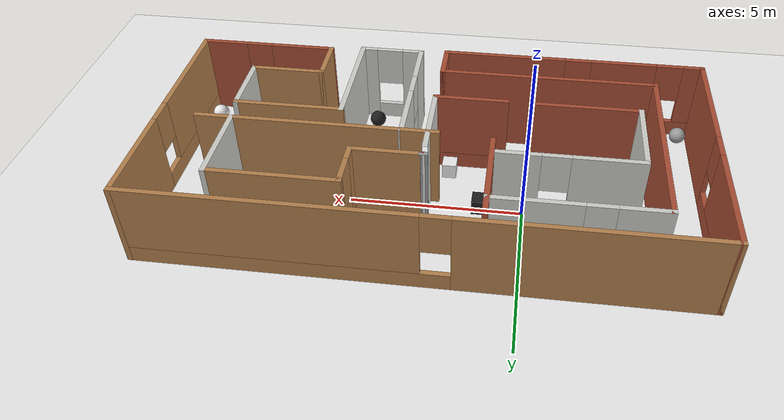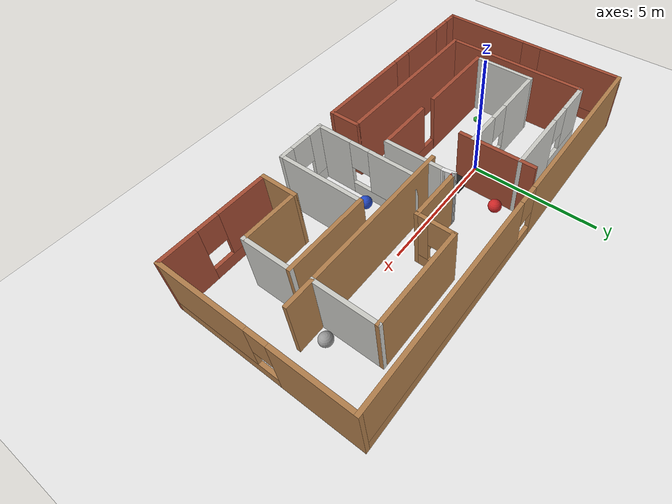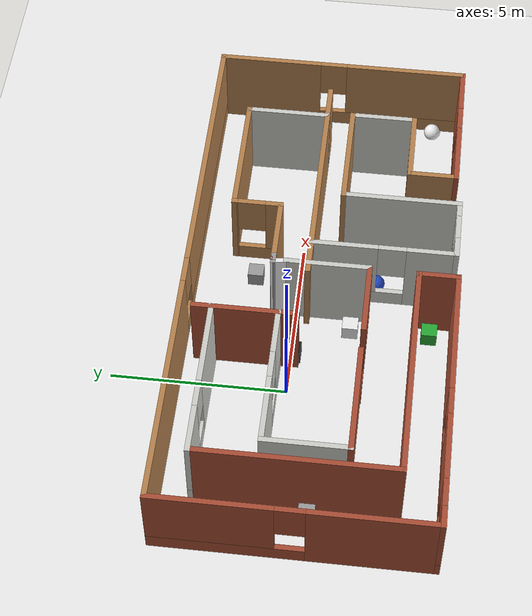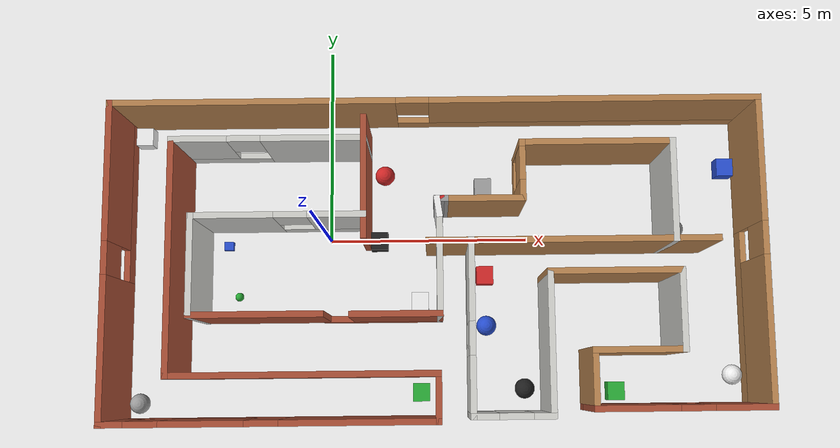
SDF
<sdf version="1.7">
 <world name="default">
  <light name="sun" type="directional">
   <pose>0 0 10 0 -0 0</pose>
   <diffuse>0.8 0.8 0.8 1</diffuse>
   <specular>0.2 0.2 0.2 1</specular>
   <attenuation>
    <range>1000</range>
    <constant>0.9</constant>
    <linear>0.01</linear>
    <quadratic>0.001</quadratic>
   </attenuation>
   <direction>-0.5 0.1 -0.9</direction>
   <spot><inner_angle>0</inner_angle><outer_angle>0</outer_angle><falloff>0</falloff></spot>
  </light>
  <model name="ground_plane">
   <static>1</static>
   <link name="link">
    <collision name="collision">
     <geometry><plane><normal>0 0 1</normal><size>100 100</size></plane></geometry>
     <surface><friction><ode><mu>100</mu><mu2>50</mu2></ode></friction></surface>
    </collision>
    <visual name="visual">
     <cast_shadows>0</cast_shadows>
     <geometry><plane><normal>0 0 1</normal><size>100 100</size></plane></geometry>
     <material>
      <script><uri>file://media/materials/scripts/gazebo.material</uri><name>Gazebo/White</name></script>
     </material>
    </visual>
   </link>
  </model>
  <gravity>0 0 -9.8</gravity>
  <magnetic_field>6e-06 2.3e-05 -4.2e-05</magnetic_field>
  <atmosphere type="adiabatic"/>
  <physics type="ode">
   <max_step_size>0.001</max_step_size>
   <real_time_factor>1</real_time_factor>
   <real_time_update_rate>1000</real_time_update_rate>
  </physics>
  <scene><ambient>0.4 0.4 0.4 1</ambient><background>0.7 0.7 0.7 1</background><shadows>1</shadows></scene>
  <audio><device>default</device></audio>
  <spherical_coordinates>
   <surface_model>EARTH_WGS84</surface_model>
   <latitude_deg>0</latitude_deg>
   <longitude_deg>0</longitude_deg>
   <elevation>0</elevation>
   <heading_deg>0</heading_deg>
  </spherical_coordinates>
  <model name="group">
   <pose>2.65647 -0.71921 0 0 -0 0</pose>
   <link name="Wall_12">
    <collision name="Wall_12_Collision">
     <geometry><box><size>3.25 0.15 2.5</size></box></geometry>
     <pose>0 0 1.25 0 -0 0</pose>
    </collision>
    <visual name="Wall_12_Visual">
     <pose>0 0 1.25 0 -0 0</pose>
     <geometry><box><size>3.25 0.15 2.5</size></box></geometry>
     <material>
      <script><uri>file://media/materials/scripts/gazebo.material</uri><name>Gazebo/Bricks</name></script>
      <ambient>1 1 1 1</ambient>
     </material>
     <meta><layer>0</layer></meta>
    </visual>
    <pose>-4.25 -1.3 0 0 -0 3.14159</pose>
   </link>
   <link name="Wall_13">
    <collision name="Wall_13_Collision">
     <geometry><box><size>2.5 0.15 2.5</size></box></geometry>
     <pose>0 0 1.25 0 -0 0</pose>
    </collision>
    <visual name="Wall_13_Visual">
     <pose>0 0 1.25 0 -0 0</pose>
     <geometry><box><size>2.5 0.15 2.5</size></box></geometry>
     <material>
      <script><uri>file://media/materials/scripts/gazebo.material</uri><name>Gazebo/CeilingTiled</name></script>
      <ambient>1 1 1 1</ambient>
     </material>
     <meta><layer>0</layer></meta>
    </visual>
    <pose>-5.8 -0.125 0 0 -0 1.5708</pose>
   </link>
   <link name="Wall_14">
    <pose>-3.75 1.05 0 0 -0 0</pose>
    <visual name="Wall_14_Visual_0">
     <pose>-1.1042 0 1.25 0 -0 0</pose>
     <geometry><box><size>2.0416 0.15 2.5</size></box></geometry>
     <material>
      <script><uri>file://media/materials/scripts/gazebo.material</uri><name>Gazebo/CeilingTiled</name></script>
      <ambient>1 1 1 1</ambient>
     </material>
     <meta><layer>0</layer></meta>
    </visual>
    <collision name="Wall_14_Collision_0">
     <geometry><box><size>2.0416 0.15 2.5</size></box></geometry>
     <pose>-1.1042 0 1.25 0 -0 0</pose>
    </collision>
    <visual name="Wall_14_Visual_1">
     <pose>1.0208 0 0.25 0 -0 0</pose>
     <geometry><box><size>2.2084 0.15 0.5</size></box></geometry>
     <material>
      <script><uri>file://media/materials/scripts/gazebo.material</uri><name>Gazebo/CeilingTiled</name></script>
      <ambient>1 1 1 1</ambient>
     </material>
     <meta><layer>0</layer></meta>
    </visual>
    <collision name="Wall_14_Collision_1">
     <geometry><box><size>2.2084 0.15 0.5</size></box></geometry>
     <pose>1.0208 0 0.25 0 -0 0</pose>
    </collision>
    <visual name="Wall_14_Visual_2">
     <pose>1.4208 0 1.5 0 -0 0</pose>
     <geometry><box><size>1.4084 0.15 2</size></box></geometry>
     <material>
      <script><uri>file://media/materials/scripts/gazebo.material</uri><name>Gazebo/CeilingTiled</name></script>
      <ambient>1 1 1 1</ambient>
     </material>
     <meta><layer>0</layer></meta>
    </visual>
    <collision name="Wall_14_Collision_2">
     <geometry><box><size>1.4084 0.15 2</size></box></geometry>
     <pose>1.4208 0 1.5 0 -0 0</pose>
    </collision>
    <visual name="Wall_14_Visual_3">
     <pose>0.316603 0 1.9 0 -0 0</pose>
     <geometry><box><size>0.8 0.15 1.2</size></box></geometry>
     <material>
      <script><uri>file://media/materials/scripts/gazebo.material</uri><name>Gazebo/CeilingTiled</name></script>
      <ambient>1 1 1 1</ambient>
     </material>
     <meta><layer>0</layer></meta>
    </visual>
    <collision name="Wall_14_Collision_3">
     <geometry><box><size>0.8 0.15 1.2</size></box></geometry>
     <pose>0.316603 0 1.9 0 -0 0</pose>
    </collision>
   </link>
   <link name="Wall_15">
    <collision name="Wall_15_Collision">
     <geometry><box><size>3 0.15 2.5</size></box></geometry>
     <pose>0 0 1.25 0 -0 0</pose>
    </collision>
    <visual name="Wall_15_Visual">
     <pose>0 0 1.25 0 -0 0</pose>
     <geometry><box><size>3 0.15 2.5</size></box></geometry>
     <material>
      <script><uri>file://media/materials/scripts/gazebo.material</uri><name>Gazebo/Bricks</name></script>
      <ambient>1 1 1 1</ambient>
     </material>
     <meta><layer>0</layer></meta>
    </visual>
    <pose>-1.7 1.975 0 0 -0 1.5708</pose>
   </link>
   <link name="Wall_16">
    <pose>-4 2.9 0 0 -0 3.14159</pose>
    <visual name="Wall_16_Visual_0">
     <pose>-1.10471 0 1.25 0 -0 0</pose>
     <geometry><box><size>2.54058 0.15 2.5</size></box></geometry>
     <material>
      <script><uri>file://media/materials/scripts/gazebo.material</uri><name>Gazebo/CeilingTiled</name></script>
      <ambient>1 1 1 1</ambient>
     </material>
     <meta><layer>0</layer></meta>
    </visual>
    <collision name="Wall_16_Collision_0">
     <geometry><box><size>2.54058 0.15 2.5</size></box></geometry>
     <pose>-1.10471 0 1.25 0 -0 0</pose>
    </collision>
    <visual name="Wall_16_Visual_1">
     <pose>1.27029 0 0.25 0 -0 0</pose>
     <geometry><box><size>2.20942 0.15 0.5</size></box></geometry>
     <material>
      <script><uri>file://media/materials/scripts/gazebo.material</uri><name>Gazebo/CeilingTiled</name></script>
      <ambient>1 1 1 1</ambient>
     </material>
     <meta><layer>0</layer></meta>
    </visual>
    <collision name="Wall_16_Collision_1">
     <geometry><box><size>2.20942 0.15 0.5</size></box></geometry>
     <pose>1.27029 0 0.25 0 -0 0</pose>
    </collision>
    <visual name="Wall_16_Visual_2">
     <pose>1.67029 0 1.5 0 -0 0</pose>
     <geometry><box><size>1.40942 0.15 2</size></box></geometry>
     <material>
      <script><uri>file://media/materials/scripts/gazebo.material</uri><name>Gazebo/CeilingTiled</name></script>
      <ambient>1 1 1 1</ambient>
     </material>
     <meta><layer>0</layer></meta>
    </visual>
    <collision name="Wall_16_Collision_2">
     <geometry><box><size>1.40942 0.15 2</size></box></geometry>
     <pose>1.67029 0 1.5 0 -0 0</pose>
    </collision>
    <visual name="Wall_16_Visual_3">
     <pose>0.565578 0 1.9 0 -0 0</pose>
     <geometry><box><size>0.8 0.15 1.2</size></box></geometry>
     <material>
      <script><uri>file://media/materials/scripts/gazebo.material</uri><name>Gazebo/CeilingTiled</name></script>
      <ambient>1 1 1 1</ambient>
     </material>
     <meta><layer>0</layer></meta>
    </visual>
    <collision name="Wall_16_Collision_3">
     <geometry><box><size>0.8 0.15 1.2</size></box></geometry>
     <pose>0.565578 0 1.9 0 -0 0</pose>
    </collision>
   </link>
   <link name="Wall_17">
    <collision name="Wall_17_Collision">
     <geometry><box><size>5.75 0.15 2.5</size></box></geometry>
     <pose>0 0 1.25 0 -0 0</pose>
    </collision>
    <visual name="Wall_17_Visual">
     <pose>0 0 1.25 0 -0 0</pose>
     <geometry><box><size>5.75 0.15 2.5</size></box></geometry>
     <material>
      <script><uri>file://media/materials/scripts/gazebo.material</uri><name>Gazebo/Bricks</name></script>
      <ambient>1 1 1 1</ambient>
     </material>
     <meta><layer>0</layer></meta>
    </visual>
    <pose>-6.3 0.1 0 0 -0 -1.5708</pose>
   </link>
   <link name="Wall_18">
    <collision name="Wall_18_Collision">
     <geometry><box><size>6.5 0.15 2.5</size></box></geometry>
     <pose>0 0 1.25 0 -0 0</pose>
    </collision>
    <visual name="Wall_18_Visual">
     <pose>0 0 1.25 0 -0 0</pose>
     <geometry><box><size>6.5 0.15 2.5</size></box></geometry>
     <material>
      <script><uri>file://media/materials/scripts/gazebo.material</uri><name>Gazebo/Bricks</name></script>
      <ambient>1 1 1 1</ambient>
     </material>
     <meta><layer>0</layer></meta>
    </visual>
    <pose>-3.125 -2.7 0 0 -0 0</pose>
   </link>
   <link name="Wall_19">
    <collision name="Wall_19_Collision">
     <geometry><box><size>1.25 0.15 2.5</size></box></geometry>
     <pose>0 0 1.25 0 -0 0</pose>
    </collision>
    <visual name="Wall_19_Visual">
     <pose>0 0 1.25 0 -0 0</pose>
     <geometry><box><size>1.25 0.15 2.5</size></box></geometry>
     <material>
      <script><uri>file://media/materials/scripts/gazebo.material</uri><name>Gazebo/Bricks</name></script>
      <ambient>1 1 1 1</ambient>
     </material>
     <meta><layer>0</layer></meta>
    </visual>
    <pose>0.05 -3.25 0 0 -0 -1.5708</pose>
   </link>
   <link name="Wall_2">
    <pose>-1.32163 -1.31575 0 0 -0 0</pose>
    <visual name="Wall_2_Visual_0">
     <pose>0 0 0.25 0 -0 0</pose>
     <geometry><box><size>3 0.15 0.5</size></box></geometry>
     <material>
      <script><uri>file://media/materials/scripts/gazebo.material</uri><name>Gazebo/Bricks</name></script>
      <ambient>1 1 1 1</ambient>
     </material>
     <meta><layer>0</layer></meta>
    </visual>
    <collision name="Wall_2_Collision_0">
     <geometry><box><size>3 0.15 0.5</size></box></geometry>
     <pose>0 0 0.25 0 -0 0</pose>
    </collision>
    <visual name="Wall_2_Visual_1">
     <pose>0.391426 0 1.5 0 -0 0</pose>
     <geometry><box><size>2.21715 0.15 2</size></box></geometry>
     <material>
      <script><uri>file://media/materials/scripts/gazebo.material</uri><name>Gazebo/Bricks</name></script>
      <ambient>1 1 1 1</ambient>
     </material>
     <meta><layer>0</layer></meta>
    </visual>
    <collision name="Wall_2_Collision_1">
     <geometry><box><size>2.21715 0.15 2</size></box></geometry>
     <pose>0.391426 0 1.5 0 -0 0</pose>
    </collision>
   </link>
   <link name="Wall_20">
    <pose>-3.875 -3.8 0 0 -0 3.14159</pose>
    <visual name="Wall_20_Visual_0">
     <pose>-2.10854 0 1.25 0 -0 0</pose>
     <geometry><box><size>3.78292 0.15 2.5</size></box></geometry>
     <material>
      <script><uri>file://media/materials/scripts/gazebo.material</uri><name>Gazebo/Bricks</name></script>
      <ambient>1 1 1 1</ambient>
     </material>
     <meta><layer>0</layer></meta>
    </visual>
    <collision name="Wall_20_Collision_0">
     <geometry><box><size>3.78292 0.15 2.5</size></box></geometry>
     <pose>-2.10854 0 1.25 0 -0 0</pose>
    </collision>
    <visual name="Wall_20_Visual_1">
     <pose>1.89146 0 0.25 0 -0 0</pose>
     <geometry><box><size>4.21708 0.15 0.5</size></box></geometry>
     <material>
      <script><uri>file://media/materials/scripts/gazebo.material</uri><name>Gazebo/Bricks</name></script>
      <ambient>1 1 1 1</ambient>
     </material>
     <meta><layer>0</layer></meta>
    </visual>
    <collision name="Wall_20_Collision_1">
     <geometry><box><size>4.21708 0.15 0.5</size></box></geometry>
     <pose>1.89146 0 0.25 0 -0 0</pose>
    </collision>
    <visual name="Wall_20_Visual_2">
     <pose>1.57076 0 1.5 0 -0 0</pose>
     <geometry><box><size>1.97567 0.15 2</size></box></geometry>
     <material>
      <script><uri>file://media/materials/scripts/gazebo.material</uri><name>Gazebo/Bricks</name></script>
      <ambient>1 1 1 1</ambient>
     </material>
     <meta><layer>0</layer></meta>
    </visual>
    <collision name="Wall_20_Collision_2">
     <geometry><box><size>1.97567 0.15 2</size></box></geometry>
     <pose>1.57076 0 1.5 0 -0 0</pose>
    </collision>
    <visual name="Wall_20_Visual_3">
     <pose>3.6793 0 1.5 0 -0 0</pose>
     <geometry><box><size>0.641403 0.15 2</size></box></geometry>
     <material>
      <script><uri>file://media/materials/scripts/gazebo.material</uri><name>Gazebo/Bricks</name></script>
      <ambient>1 1 1 1</ambient>
     </material>
     <meta><layer>0</layer></meta>
    </visual>
    <collision name="Wall_20_Collision_3">
     <geometry><box><size>0.641403 0.15 2</size></box></geometry>
     <pose>3.6793 0 1.5 0 -0 0</pose>
    </collision>
    <visual name="Wall_20_Visual_4">
     <pose>0.182923 0 1.9 0 -0 0</pose>
     <geometry><box><size>0.8 0.15 1.2</size></box></geometry>
     <material>
      <script><uri>file://media/materials/scripts/gazebo.material</uri><name>Gazebo/Bricks</name></script>
      <ambient>1 1 1 1</ambient>
     </material>
     <meta><layer>0</layer></meta>
    </visual>
    <collision name="Wall_20_Collision_4">
     <geometry><box><size>0.8 0.15 1.2</size></box></geometry>
     <pose>0.182923 0 1.9 0 -0 0</pose>
    </collision>
    <visual name="Wall_20_Visual_5">
     <pose>2.9586 0 1.9 0 -0 0</pose>
     <geometry><box><size>0.8 0.15 1.2</size></box></geometry>
     <material>
      <script><uri>file://media/materials/scripts/gazebo.material</uri><name>Gazebo/Bricks</name></script>
      <ambient>1 1 1 1</ambient>
     </material>
     <meta><layer>0</layer></meta>
    </visual>
    <collision name="Wall_20_Collision_5">
     <geometry><box><size>0.8 0.15 1.2</size></box></geometry>
     <pose>2.9586 0 1.9 0 -0 0</pose>
    </collision>
   </link>
   <link name="Wall_21">
    <pose>-7.8 -0 0 0 -0 1.5708</pose>
    <visual name="Wall_21_Visual_0">
     <pose>-2.10255 0 1.25 0 -0 0</pose>
     <geometry><box><size>3.5449 0.15 2.5</size></box></geometry>
     <material>
      <script><uri>file://media/materials/scripts/gazebo.material</uri><name>Gazebo/Bricks</name></script>
      <ambient>1 1 1 1</ambient>
     </material>
     <meta><layer>0</layer></meta>
    </visual>
    <collision name="Wall_21_Collision_0">
     <geometry><box><size>3.5449 0.15 2.5</size></box></geometry>
     <pose>-2.10255 0 1.25 0 -0 0</pose>
    </collision>
    <visual name="Wall_21_Visual_1">
     <pose>1.77245 0 0.25 0 -0 0</pose>
     <geometry><box><size>4.2051 0.15 0.5</size></box></geometry>
     <material>
      <script><uri>file://media/materials/scripts/gazebo.material</uri><name>Gazebo/Bricks</name></script>
      <ambient>1 1 1 1</ambient>
     </material>
     <meta><layer>0</layer></meta>
    </visual>
    <collision name="Wall_21_Collision_1">
     <geometry><box><size>4.2051 0.15 0.5</size></box></geometry>
     <pose>1.77245 0 0.25 0 -0 0</pose>
    </collision>
    <visual name="Wall_21_Visual_2">
     <pose>2.17245 0 1.5 0 -0 0</pose>
     <geometry><box><size>3.4051 0.15 2</size></box></geometry>
     <material>
      <script><uri>file://media/materials/scripts/gazebo.material</uri><name>Gazebo/Bricks</name></script>
      <ambient>1 1 1 1</ambient>
     </material>
     <meta><layer>0</layer></meta>
    </visual>
    <collision name="Wall_21_Collision_2">
     <geometry><box><size>3.4051 0.15 2</size></box></geometry>
     <pose>2.17245 0 1.5 0 -0 0</pose>
    </collision>
    <visual name="Wall_21_Visual_3">
     <pose>0.069904 0 1.9 0 -0 0</pose>
     <geometry><box><size>0.8 0.15 1.2</size></box></geometry>
     <material>
      <script><uri>file://media/materials/scripts/gazebo.material</uri><name>Gazebo/Bricks</name></script>
      <ambient>1 1 1 1</ambient>
     </material>
     <meta><layer>0</layer></meta>
    </visual>
    <collision name="Wall_21_Collision_3">
     <geometry><box><size>0.8 0.15 1.2</size></box></geometry>
     <pose>0.069904 0 1.9 0 -0 0</pose>
    </collision>
   </link>
   <link name="Wall_22">
    <pose>0 3.8 0 0 -0 0</pose>
    <visual name="Wall_22_Visual_0">
     <pose>-4.40133 0 1.25 0 -0 0</pose>
     <geometry><box><size>6.94733 0.15 2.5</size></box></geometry>
     <material>
      <script><uri>file://media/materials/scripts/gazebo.material</uri><name>Gazebo/Wood</name></script>
      <ambient>1 1 1 1</ambient>
     </material>
     <meta><layer>0</layer></meta>
    </visual>
    <collision name="Wall_22_Collision_0">
     <geometry><box><size>6.94733 0.15 2.5</size></box></geometry>
     <pose>-4.40133 0 1.25 0 -0 0</pose>
    </collision>
    <visual name="Wall_22_Visual_1">
     <pose>3.47367 0 0.25 0 -0 0</pose>
     <geometry><box><size>8.80267 0.15 0.5</size></box></geometry>
     <material>
      <script><uri>file://media/materials/scripts/gazebo.material</uri><name>Gazebo/Wood</name></script>
      <ambient>1 1 1 1</ambient>
     </material>
     <meta><layer>0</layer></meta>
    </visual>
    <collision name="Wall_22_Collision_1">
     <geometry><box><size>8.80267 0.15 0.5</size></box></geometry>
     <pose>3.47367 0 0.25 0 -0 0</pose>
    </collision>
    <visual name="Wall_22_Visual_2">
     <pose>3.87367 0 1.5 0 -0 0</pose>
     <geometry><box><size>8.00267 0.15 2</size></box></geometry>
     <material>
      <script><uri>file://media/materials/scripts/gazebo.material</uri><name>Gazebo/Wood</name></script>
      <ambient>1 1 1 1</ambient>
     </material>
     <meta><layer>0</layer></meta>
    </visual>
    <collision name="Wall_22_Collision_2">
     <geometry><box><size>8.00267 0.15 2</size></box></geometry>
     <pose>3.87367 0 1.5 0 -0 0</pose>
    </collision>
    <visual name="Wall_22_Visual_3">
     <pose>-0.527668 0 1.9 0 -0 0</pose>
     <geometry><box><size>0.8 0.15 1.2</size></box></geometry>
     <material>
      <script><uri>file://media/materials/scripts/gazebo.material</uri><name>Gazebo/Wood</name></script>
      <ambient>1 1 1 1</ambient>
     </material>
     <meta><layer>0</layer></meta>
    </visual>
    <collision name="Wall_22_Collision_3">
     <geometry><box><size>0.8 0.15 1.2</size></box></geometry>
     <pose>-0.527668 0 1.9 0 -0 0</pose>
    </collision>
   </link>
   <link name="Wall_23">
    <pose>7.8 0.125 0 0 -0 -1.5708</pose>
    <visual name="Wall_23_Visual_0">
     <pose>-2.20937 0 1.25 0 -0 0</pose>
     <geometry><box><size>3.08127 0.15 2.5</size></box></geometry>
     <material>
      <script><uri>file://media/materials/scripts/gazebo.material</uri><name>Gazebo/Wood</name></script>
      <ambient>1 1 1 1</ambient>
     </material>
     <meta><layer>0</layer></meta>
    </visual>
    <collision name="Wall_23_Collision_0">
     <geometry><box><size>3.08127 0.15 2.5</size></box></geometry>
     <pose>-2.20937 0 1.25 0 -0 0</pose>
    </collision>
    <visual name="Wall_23_Visual_1">
     <pose>1.54063 0 0.25 0 -0 0</pose>
     <geometry><box><size>4.41873 0.15 0.5</size></box></geometry>
     <material>
      <script><uri>file://media/materials/scripts/gazebo.material</uri><name>Gazebo/Wood</name></script>
      <ambient>1 1 1 1</ambient>
     </material>
     <meta><layer>0</layer></meta>
    </visual>
    <collision name="Wall_23_Collision_1">
     <geometry><box><size>4.41873 0.15 0.5</size></box></geometry>
     <pose>1.54063 0 0.25 0 -0 0</pose>
    </collision>
    <visual name="Wall_23_Visual_2">
     <pose>1.94063 0 1.5 0 -0 0</pose>
     <geometry><box><size>3.61873 0.15 2</size></box></geometry>
     <material>
      <script><uri>file://media/materials/scripts/gazebo.material</uri><name>Gazebo/Wood</name></script>
      <ambient>1 1 1 1</ambient>
     </material>
     <meta><layer>0</layer></meta>
    </visual>
    <collision name="Wall_23_Collision_2">
     <geometry><box><size>3.61873 0.15 2</size></box></geometry>
     <pose>1.94063 0 1.5 0 -0 0</pose>
    </collision>
    <visual name="Wall_23_Visual_3">
     <pose>-0.268733 0 1.9 0 -0 0</pose>
     <geometry><box><size>0.8 0.15 1.2</size></box></geometry>
     <material>
      <script><uri>file://media/materials/scripts/gazebo.material</uri><name>Gazebo/Wood</name></script>
      <ambient>1 1 1 1</ambient>
     </material>
     <meta><layer>0</layer></meta>
    </visual>
    <collision name="Wall_23_Collision_3">
     <geometry><box><size>0.8 0.15 1.2</size></box></geometry>
     <pose>-0.268733 0 1.9 0 -0 0</pose>
    </collision>
   </link>
   <link name="Wall_24">
    <pose>5.75 -3.55 0 0 -0 3.14159</pose>
    <visual name="Wall_24_Visual_0">
     <pose>-1.40101 0 1.25 0 -0 0</pose>
     <geometry><box><size>1.44798 0.15 2.5</size></box></geometry>
     <material>
      <script><uri>file://media/materials/scripts/gazebo.material</uri><name>Gazebo/Bricks</name></script>
      <ambient>1 1 1 1</ambient>
     </material>
     <meta><layer>0</layer></meta>
    </visual>
    <collision name="Wall_24_Collision_0">
     <geometry><box><size>1.44798 0.15 2.5</size></box></geometry>
     <pose>-1.40101 0 1.25 0 -0 0</pose>
    </collision>
    <visual name="Wall_24_Visual_1">
     <pose>0.723989 0 0.25 0 -0 0</pose>
     <geometry><box><size>2.80202 0.15 0.5</size></box></geometry>
     <material>
      <script><uri>file://media/materials/scripts/gazebo.material</uri><name>Gazebo/Bricks</name></script>
      <ambient>1 1 1 1</ambient>
     </material>
     <meta><layer>0</layer></meta>
    </visual>
    <collision name="Wall_24_Collision_1">
     <geometry><box><size>2.80202 0.15 0.5</size></box></geometry>
     <pose>0.723989 0 0.25 0 -0 0</pose>
    </collision>
    <visual name="Wall_24_Visual_2">
     <pose>1.12399 0 1.5 0 -0 0</pose>
     <geometry><box><size>2.00202 0.15 2</size></box></geometry>
     <material>
      <script><uri>file://media/materials/scripts/gazebo.material</uri><name>Gazebo/Bricks</name></script>
      <ambient>1 1 1 1</ambient>
     </material>
     <meta><layer>0</layer></meta>
    </visual>
    <collision name="Wall_24_Collision_2">
     <geometry><box><size>2.00202 0.15 2</size></box></geometry>
     <pose>1.12399 0 1.5 0 -0 0</pose>
    </collision>
    <visual name="Wall_24_Visual_3">
     <pose>-0.277021 0 1.9 0 -0 0</pose>
     <geometry><box><size>0.8 0.15 1.2</size></box></geometry>
     <material>
      <script><uri>file://media/materials/scripts/gazebo.material</uri><name>Gazebo/Bricks</name></script>
      <ambient>1 1 1 1</ambient>
     </material>
     <meta><layer>0</layer></meta>
    </visual>
    <collision name="Wall_24_Collision_3">
     <geometry><box><size>0.8 0.15 1.2</size></box></geometry>
     <pose>-0.277021 0 1.9 0 -0 0</pose>
    </collision>
   </link>
   <link name="Wall_25">
    <collision name="Wall_25_Collision">
     <geometry><box><size>1.5 0.15 2.5</size></box></geometry>
     <pose>0 0 1.25 0 -0 0</pose>
    </collision>
    <visual name="Wall_25_Visual">
     <pose>0 0 1.25 0 -0 0</pose>
     <geometry><box><size>1.5 0.15 2.5</size></box></geometry>
     <material>
      <script><uri>file://media/materials/scripts/gazebo.material</uri><name>Gazebo/Wood</name></script>
      <ambient>1 1 1 1</ambient>
     </material>
     <meta><layer>0</layer></meta>
    </visual>
    <pose>3.7 -2.875 0 0 -0 1.5708</pose>
   </link>
   <link name="Wall_26">
    <collision name="Wall_26_Collision">
     <geometry><box><size>2.25 0.15 2.5</size></box></geometry>
     <pose>0 0 1.25 0 -0 0</pose>
    </collision>
    <visual name="Wall_26_Visual">
     <pose>0 0 1.25 0 -0 0</pose>
     <geometry><box><size>2.25 0.15 2.5</size></box></geometry>
     <material>
      <script><uri>file://media/materials/scripts/gazebo.material</uri><name>Gazebo/Wood</name></script>
      <ambient>1 1 1 1</ambient>
     </material>
     <meta><layer>0</layer></meta>
    </visual>
    <pose>4.75 -2.2 0 0 -0 0</pose>
   </link>
   <link name="Wall_27">
    <collision name="Wall_27_Collision">
     <geometry><box><size>2 0.15 2.5</size></box></geometry>
     <pose>0 0 1.25 0 -0 0</pose>
    </collision>
    <visual name="Wall_27_Visual">
     <pose>0 0 1.25 0 -0 0</pose>
     <geometry><box><size>2 0.15 2.5</size></box></geometry>
     <material>
      <script><uri>file://media/materials/scripts/gazebo.material</uri><name>Gazebo/CeilingTiled</name></script>
      <ambient>1 1 1 1</ambient>
     </material>
     <meta><layer>0</layer></meta>
    </visual>
    <pose>5.8 -1.275 0 0 -0 1.5708</pose>
   </link>
   <link name="Wall_28">
    <collision name="Wall_28_Collision">
     <geometry><box><size>3.25 0.15 2.5</size></box></geometry>
     <pose>0 0 1.25 0 -0 0</pose>
    </collision>
    <visual name="Wall_28_Visual">
     <pose>0 0 1.25 0 -0 0</pose>
     <geometry><box><size>3.25 0.15 2.5</size></box></geometry>
     <material>
      <script><uri>file://media/materials/scripts/gazebo.material</uri><name>Gazebo/Wood</name></script>
      <ambient>1 1 1 1</ambient>
     </material>
     <meta><layer>0</layer></meta>
    </visual>
    <pose>4.25 -0.35 0 0 -0 3.14159</pose>
   </link>
   <link name="Wall_29">
    <collision name="Wall_29_Collision">
     <geometry><box><size>3.5 0.15 2.5</size></box></geometry>
     <pose>0 0 1.25 0 -0 0</pose>
    </collision>
    <visual name="Wall_29_Visual">
     <pose>0 0 1.25 0 -0 0</pose>
     <geometry><box><size>3.5 0.15 2.5</size></box></geometry>
     <material>
      <script><uri>file://media/materials/scripts/gazebo.material</uri><name>Gazebo/CeilingTiled</name></script>
      <ambient>1 1 1 1</ambient>
     </material>
     <meta><layer>0</layer></meta>
    </visual>
    <pose>2.7 -2.025 0 0 -0 -1.5708</pose>
   </link>
   <link name="Wall_3">
    <collision name="Wall_3_Collision">
     <geometry><box><size>2.5 0.15 2.5</size></box></geometry>
     <pose>0 0 1.25 0 -0 0</pose>
    </collision>
    <visual name="Wall_3_Visual">
     <pose>0 0 1.25 0 -0 0</pose>
     <geometry><box><size>2.5 0.15 2.5</size></box></geometry>
     <material>
      <script><uri>file://media/materials/scripts/gazebo.material</uri><name>Gazebo/CeilingTiled</name></script>
      <ambient>1 1 1 1</ambient>
     </material>
     <meta><layer>0</layer></meta>
    </visual>
    <pose>0.103367 -0.14075 0 0 -0 1.5708</pose>
   </link>
   <link name="Wall_30">
    <pose>1.775 -3.7 0 0 -0 3.14159</pose>
    <visual name="Wall_30_Visual_0">
     <pose>-0.732691 0 1.25 0 -0 0</pose>
     <geometry><box><size>0.534619 0.15 2.5</size></box></geometry>
     <material>
      <script><uri>file://media/materials/scripts/gazebo.material</uri><name>Gazebo/CeilingTiled</name></script>
      <ambient>1 1 1 1</ambient>
     </material>
     <meta><layer>0</layer></meta>
    </visual>
    <collision name="Wall_30_Collision_0">
     <geometry><box><size>0.534619 0.15 2.5</size></box></geometry>
     <pose>-0.732691 0 1.25 0 -0 0</pose>
    </collision>
    <visual name="Wall_30_Visual_1">
     <pose>0.267309 0 0.25 0 -0 0</pose>
     <geometry><box><size>1.46538 0.15 0.5</size></box></geometry>
     <material>
      <script><uri>file://media/materials/scripts/gazebo.material</uri><name>Gazebo/CeilingTiled</name></script>
      <ambient>1 1 1 1</ambient>
     </material>
     <meta><layer>0</layer></meta>
    </visual>
    <collision name="Wall_30_Collision_1">
     <geometry><box><size>1.46538 0.15 0.5</size></box></geometry>
     <pose>0.267309 0 0.25 0 -0 0</pose>
    </collision>
    <visual name="Wall_30_Visual_2">
     <pose>0.667309 0 1.5 0 -0 0</pose>
     <geometry><box><size>0.665381 0.15 2</size></box></geometry>
     <material>
      <script><uri>file://media/materials/scripts/gazebo.material</uri><name>Gazebo/CeilingTiled</name></script>
      <ambient>1 1 1 1</ambient>
     </material>
     <meta><layer>0</layer></meta>
    </visual>
    <collision name="Wall_30_Collision_2">
     <geometry><box><size>0.665381 0.15 2</size></box></geometry>
     <pose>0.667309 0 1.5 0 -0 0</pose>
    </collision>
    <visual name="Wall_30_Visual_3">
     <pose>-0.065381 0 1.9 0 -0 0</pose>
     <geometry><box><size>0.8 0.15 1.2</size></box></geometry>
     <material>
      <script><uri>file://media/materials/scripts/gazebo.material</uri><name>Gazebo/CeilingTiled</name></script>
      <ambient>1 1 1 1</ambient>
     </material>
     <meta><layer>0</layer></meta>
    </visual>
    <collision name="Wall_30_Collision_3">
     <geometry><box><size>0.8 0.15 1.2</size></box></geometry>
     <pose>-0.065381 0 1.9 0 -0 0</pose>
    </collision>
   </link>
   <link name="Wall_31">
    <pose>0.85 -1.65 0 0 -0 1.5708</pose>
    <visual name="Wall_31_Visual_0">
     <pose>-1.3856 0 1.25 0 -0 0</pose>
     <geometry><box><size>1.4788 0.15 2.5</size></box></geometry>
     <material>
      <script><uri>file://media/materials/scripts/gazebo.material</uri><name>Gazebo/CeilingTiled</name></script>
      <ambient>1 1 1 1</ambient>
     </material>
     <meta><layer>0</layer></meta>
    </visual>
    <collision name="Wall_31_Collision_0">
     <geometry><box><size>1.4788 0.15 2.5</size></box></geometry>
     <pose>-1.3856 0 1.25 0 -0 0</pose>
    </collision>
    <visual name="Wall_31_Visual_1">
     <pose>0.739401 0 0.25 0 -0 0</pose>
     <geometry><box><size>2.7712 0.15 0.5</size></box></geometry>
     <material>
      <script><uri>file://media/materials/scripts/gazebo.material</uri><name>Gazebo/CeilingTiled</name></script>
      <ambient>1 1 1 1</ambient>
     </material>
     <meta><layer>0</layer></meta>
    </visual>
    <collision name="Wall_31_Collision_1">
     <geometry><box><size>2.7712 0.15 0.5</size></box></geometry>
     <pose>0.739401 0 0.25 0 -0 0</pose>
    </collision>
    <visual name="Wall_31_Visual_2">
     <pose>1.1394 0 1.5 0 -0 0</pose>
     <geometry><box><size>1.9712 0.15 2</size></box></geometry>
     <material>
      <script><uri>file://media/materials/scripts/gazebo.material</uri><name>Gazebo/CeilingTiled</name></script>
      <ambient>1 1 1 1</ambient>
     </material>
     <meta><layer>0</layer></meta>
    </visual>
    <collision name="Wall_31_Collision_2">
     <geometry><box><size>1.9712 0.15 2</size></box></geometry>
     <pose>1.1394 0 1.5 0 -0 0</pose>
    </collision>
    <visual name="Wall_31_Visual_3">
     <pose>-0.246197 0 1.9 0 -0 0</pose>
     <geometry><box><size>0.8 0.15 1.2</size></box></geometry>
     <material>
      <script><uri>file://media/materials/scripts/gazebo.material</uri><name>Gazebo/CeilingTiled</name></script>
      <ambient>1 1 1 1</ambient>
     </material>
     <meta><layer>0</layer></meta>
    </visual>
    <collision name="Wall_31_Collision_3">
     <geometry><box><size>0.8 0.15 1.2</size></box></geometry>
     <pose>-0.246197 0 1.9 0 -0 0</pose>
    </collision>
   </link>
   <link name="Wall_32">
    <collision name="Wall_32_Collision">
     <geometry><box><size>7 0.15 2.5</size></box></geometry>
     <pose>0 0 1.25 0 -0 0</pose>
    </collision>
    <visual name="Wall_32_Visual">
     <pose>0 0 1.25 0 -0 0</pose>
     <geometry><box><size>7 0.15 2.5</size></box></geometry>
     <material>
      <script><uri>file://media/materials/scripts/gazebo.material</uri><name>Gazebo/Wood</name></script>
      <ambient>1 1 1 1</ambient>
     </material>
     <meta><layer>0</layer></meta>
    </visual>
    <pose>3.275 0.4 0 0 -0 0</pose>
   </link>
   <link name="Wall_33">
    <collision name="Wall_33_Collision">
     <geometry><box><size>2.5 0.15 2.5</size></box></geometry>
     <pose>0 0 1.25 0 -0 0</pose>
    </collision>
    <visual name="Wall_33_Visual">
     <pose>0 0 1.25 0 -0 0</pose>
     <geometry><box><size>2.5 0.15 2.5</size></box></geometry>
     <material>
      <script><uri>file://media/materials/scripts/gazebo.material</uri><name>Gazebo/CeilingTiled</name></script>
      <ambient>1 1 1 1</ambient>
     </material>
     <meta><layer>0</layer></meta>
    </visual>
    <pose>5.7 1.575 0 0 -0 1.5708</pose>
   </link>
   <link name="Wall_34">
    <collision name="Wall_34_Collision">
     <geometry><box><size>3.75 0.15 2.5</size></box></geometry>
     <pose>0 0 1.25 0 -0 0</pose>
    </collision>
    <visual name="Wall_34_Visual">
     <pose>0 0 1.25 0 -0 0</pose>
     <geometry><box><size>3.75 0.15 2.5</size></box></geometry>
     <material>
      <script><uri>file://media/materials/scripts/gazebo.material</uri><name>Gazebo/Wood</name></script>
      <ambient>1 1 1 1</ambient>
     </material>
     <meta><layer>0</layer></meta>
    </visual>
    <pose>3.9 2.75 0 0 -0 3.14159</pose>
   </link>
   <link name="Wall_35">
    <pose>2.1 2.075 0 0 -0 -1.5708</pose>
    <visual name="Wall_35_Visual_0">
     <pose>-0.658615 0 1.25 0 -0 0</pose>
     <geometry><box><size>0.182769 0.15 2.5</size></box></geometry>
     <material>
      <script><uri>file://media/materials/scripts/gazebo.material</uri><name>Gazebo/Wood</name></script>
      <ambient>1 1 1 1</ambient>
     </material>
     <meta><layer>0</layer></meta>
    </visual>
    <collision name="Wall_35_Collision_0">
     <geometry><box><size>0.182769 0.15 2.5</size></box></geometry>
     <pose>-0.658615 0 1.25 0 -0 0</pose>
    </collision>
    <visual name="Wall_35_Visual_1">
     <pose>0.091385 0 0.25 0 -0 0</pose>
     <geometry><box><size>1.31723 0.15 0.5</size></box></geometry>
     <material>
      <script><uri>file://media/materials/scripts/gazebo.material</uri><name>Gazebo/Wood</name></script>
      <ambient>1 1 1 1</ambient>
     </material>
     <meta><layer>0</layer></meta>
    </visual>
    <collision name="Wall_35_Collision_1">
     <geometry><box><size>1.31723 0.15 0.5</size></box></geometry>
     <pose>0.091385 0 0.25 0 -0 0</pose>
    </collision>
    <visual name="Wall_35_Visual_2">
     <pose>0.491385 0 1.5 0 -0 0</pose>
     <geometry><box><size>0.517231 0.15 2</size></box></geometry>
     <material>
      <script><uri>file://media/materials/scripts/gazebo.material</uri><name>Gazebo/Wood</name></script>
      <ambient>1 1 1 1</ambient>
     </material>
     <meta><layer>0</layer></meta>
    </visual>
    <collision name="Wall_35_Collision_2">
     <geometry><box><size>0.517231 0.15 2</size></box></geometry>
     <pose>0.491385 0 1.5 0 -0 0</pose>
    </collision>
    <visual name="Wall_35_Visual_3">
     <pose>-0.167231 0 1.9 0 -0 0</pose>
     <geometry><box><size>0.8 0.15 1.2</size></box></geometry>
     <material>
      <script><uri>file://media/materials/scripts/gazebo.material</uri><name>Gazebo/Wood</name></script>
      <ambient>1 1 1 1</ambient>
     </material>
     <meta><layer>0</layer></meta>
    </visual>
    <collision name="Wall_35_Collision_3">
     <geometry><box><size>0.8 0.15 1.2</size></box></geometry>
     <pose>-0.167231 0 1.9 0 -0 0</pose>
    </collision>
   </link>
   <link name="Wall_36">
    <collision name="Wall_36_Collision">
     <geometry><box><size>2 0.15 2.5</size></box></geometry>
     <pose>0 0 1.25 0 -0 0</pose>
    </collision>
    <visual name="Wall_36_Visual">
     <pose>0 0 1.25 0 -0 0</pose>
     <geometry><box><size>2 0.15 2.5</size></box></geometry>
     <material>
      <script><uri>file://media/materials/scripts/gazebo.material</uri><name>Gazebo/Wood</name></script>
      <ambient>1 1 1 1</ambient>
     </material>
     <meta><layer>0</layer></meta>
    </visual>
    <pose>1.175 1.4 0 0 -0 3.14159</pose>
   </link>
   <link name="Wall_37">
    <collision name="Wall_37_Collision">
     <geometry><box><size>0.25 0.15 2.5</size></box></geometry>
     <pose>0 0 1.25 0 -0 0</pose>
    </collision>
    <visual name="Wall_37_Visual">
     <pose>0 0 1.25 0 -0 0</pose>
     <geometry><box><size>0.25 0.15 2.5</size></box></geometry>
     <material>
      <script><uri>file://media/materials/scripts/gazebo.material</uri><name>Gazebo/Grey</name></script>
      <ambient>1 1 1 1</ambient>
     </material>
     <meta><layer>0</layer></meta>
    </visual>
    <pose>0.2 1.4 0 0 -0 3.14159</pose>
   </link>
   <link name="Wall_38">
    <collision name="Wall_38_Collision">
     <geometry><box><size>0.15 0.15 2.5</size></box></geometry>
     <pose>0 0 1.25 0 -0 0</pose>
    </collision>
    <visual name="Wall_38_Visual">
     <pose>0 0 1.25 0 -0 0</pose>
     <geometry><box><size>0.15 0.15 2.5</size></box></geometry>
     <material>
      <script><uri>file://media/materials/scripts/gazebo.material</uri><name>Gazebo/Red</name></script>
      <ambient>1 1 1 1</ambient>
     </material>
     <meta><layer>0</layer></meta>
    </visual>
    <pose>0.15 1.4 0 0 -0 0</pose>
   </link>
   <link name="Wall_39">
    <collision name="Wall_39_Collision">
     <geometry><box><size>0.25 0.15 2.5</size></box></geometry>
     <pose>0 0 1.25 0 -0 0</pose>
    </collision>
    <visual name="Wall_39_Visual">
     <pose>0 0 1.25 0 -0 0</pose>
     <geometry><box><size>0.25 0.15 2.5</size></box></geometry>
     <material>
      <script><uri>file://media/materials/scripts/gazebo.material</uri><name>Gazebo/Grey</name></script>
      <ambient>1 1 1 1</ambient>
     </material>
     <meta><layer>0</layer></meta>
    </visual>
    <pose>0.1 1.4 0 0 -0 3.14159</pose>
   </link>
   <link name="Wall_40">
    <collision name="Wall_40_Collision">
     <geometry><box><size>0.519622 0.15 2.5</size></box></geometry>
     <pose>0 0 1.25 0 -0 0</pose>
    </collision>
    <visual name="Wall_40_Visual">
     <pose>0 0 1.25 0 -0 0</pose>
     <geometry><box><size>0.519622 0.15 2.5</size></box></geometry>
     <material>
      <script><uri>file://media/materials/scripts/gazebo.material</uri><name>Gazebo/White</name></script>
      <ambient>1 1 1 1</ambient>
     </material>
     <meta><layer>0</layer></meta>
    </visual>
    <pose>0.076684 1.21713 0 0 -0 -1.42591</pose>
   </link>
   <static>1</static>
  </model>
  <model name="unit_box_clone_clone">
   <pose>-2.63457 -0.117525 0.08763 -3e-06 5e-06 0</pose>
   <link name="link">
    <inertial>
     <mass>1</mass>
     <inertia>
      <ixx>0.166667</ixx>
      <ixy>0</ixy>
      <ixz>0</ixz>
      <iyy>0.166667</iyy>
      <iyz>0</iyz>
      <izz>0.166667</izz>
     </inertia>
    </inertial>
    <collision name="collision">
     <geometry><box><size>0.236593 0.211519 0.175261</size></box></geometry>
    </collision>
    <visual name="visual">
     <geometry><box><size>0.236593 0.211519 0.175261</size></box></geometry>
     <material>
      <script><name>Gazebo/Blue</name><uri>file://media/materials/scripts/gazebo.material</uri></script>
     </material>
    </visual>
   </link>
  </model>
  <model name="unit_sphere_clone_4_clone">
   <pose>-2.34781 -1.42261 0.11026 0 -0 0</pose>
   <link name="link">
    <inertial>
     <mass>1</mass>
     <inertia><ixx>0.1</ixx><ixy>0</ixy><ixz>0</ixz><iyy>0.1</iyy><iyz>0</iyz><izz>0.1</izz></inertia>
    </inertial>
    <collision name="collision"><geometry><sphere><radius>0.11026</radius></sphere></geometry></collision>
    <visual name="visual">
     <geometry><sphere><radius>0.11026</radius></sphere></geometry>
     <material>
      <script><name>Gazebo/Green</name><uri>file://media/materials/scripts/gazebo.material</uri></script>
     </material>
    </visual>
   </link>
  </model>
  <model name="unit_box_clone_clone_clone">
   <pose>1.24334 -0.057957 0.230951 0 0 -4e-06</pose>
   <link name="link">
    <inertial>
     <mass>1</mass>
     <inertia>
      <ixx>0.166667</ixx>
      <ixy>0</ixy>
      <ixz>0</ixz>
      <iyy>0.166667</iyy>
      <iyz>0</iyz>
      <izz>0.166667</izz>
     </inertia>
    </inertial>
    <collision name="collision">
     <geometry><box><size>0.423737 0.449425 0.461903</size></box></geometry>
    </collision>
    <visual name="visual">
     <geometry><box><size>0.423737 0.449425 0.461903</size></box></geometry>
     <material>
      <script><name>Gazebo/Black</name><uri>file://media/materials/scripts/gazebo.material</uri></script>
     </material>
    </visual>
   </link>
  </model>
  <model name="unit_box_clone_clone_clone_0">
   <pose>2.26566 -1.59767 0.230951 0 0 -3e-06</pose>
   <link name="link">
    <inertial>
     <mass>1</mass>
     <inertia>
      <ixx>0.166667</ixx>
      <ixy>0</ixy>
      <ixz>0</ixz>
      <iyy>0.166667</iyy>
      <iyz>0</iyz>
      <izz>0.166667</izz>
     </inertia>
    </inertial>
    <collision name="collision">
     <geometry><box><size>0.423737 0.449425 0.461903</size></box></geometry>
    </collision>
    <visual name="visual">
     <geometry><box><size>0.423737 0.449425 0.461903</size></box></geometry>
     <material>
      <script><name>Gazebo/White</name><uri>file://media/materials/scripts/gazebo.material</uri></script>
     </material>
    </visual>
   </link>
  </model>
  <model name="unit_box_clone_clone_clone_1">
   <pose>3.88726 1.30977 0.230951 0 0 -3e-06</pose>
   <link name="link">
    <inertial>
     <mass>1</mass>
     <inertia>
      <ixx>0.166667</ixx>
      <ixy>0</ixy>
      <ixz>0</ixz>
      <iyy>0.166667</iyy>
      <iyz>0</iyz>
      <izz>0.166667</izz>
     </inertia>
    </inertial>
    <collision name="collision">
     <geometry><box><size>0.423737 0.449425 0.461903</size></box></geometry>
    </collision>
    <visual name="visual">
     <geometry><box><size>0.423737 0.449425 0.461903</size></box></geometry>
     <material>
      <script><name>Gazebo/Grey</name><uri>file://media/materials/scripts/gazebo.material</uri></script>
     </material>
    </visual>
   </link>
  </model>
  <model name="unit_box_clone_clone_clone_2">
   <pose>10.1117 1.76458 0.230951 0 0 -3e-06</pose>
   <link name="link">
    <inertial>
     <mass>1</mass>
     <inertia>
      <ixx>0.166667</ixx>
      <ixy>0</ixy>
      <ixz>0</ixz>
      <iyy>0.166667</iyy>
      <iyz>0</iyz>
      <izz>0.166667</izz>
     </inertia>
    </inertial>
    <collision name="collision">
     <geometry><box><size>0.423737 0.449425 0.461903</size></box></geometry>
    </collision>
    <visual name="visual">
     <geometry><box><size>0.423737 0.449425 0.461903</size></box></geometry>
     <material>
      <script><name>Gazebo/Blue</name><uri>file://media/materials/scripts/gazebo.material</uri></script>
     </material>
    </visual>
   </link>
  </model>
  <model name="unit_box_clone_clone_clone_3">
   <pose>3.90502 -0.955478 0.230951 0 0 -3e-06</pose>
   <link name="link">
    <inertial>
     <mass>1</mass>
     <inertia>
      <ixx>0.166667</ixx>
      <ixy>0</ixy>
      <ixz>0</ixz>
      <iyy>0.166667</iyy>
      <iyz>0</iyz>
      <izz>0.166667</izz>
     </inertia>
    </inertial>
    <collision name="collision">
     <geometry><box><size>0.423737 0.449425 0.461903</size></box></geometry>
    </collision>
    <visual name="visual">
     <geometry><box><size>0.423737 0.449425 0.461903</size></box></geometry>
     <material>
      <script><name>Gazebo/Red</name><uri>file://media/materials/scripts/gazebo.material</uri></script>
     </material>
    </visual>
   </link>
  </model>
  <model name="unit_box_clone_clone_clone_4">
   <pose>7.12648 -3.87919 0.230951 0 0 -3e-06</pose>
   <link name="link">
    <inertial>
     <mass>1</mass>
     <inertia>
      <ixx>0.166667</ixx>
      <ixy>0</ixy>
      <ixz>0</ixz>
      <iyy>0.166667</iyy>
      <iyz>0</iyz>
      <izz>0.166667</izz>
     </inertia>
    </inertial>
    <collision name="collision">
     <geometry><box><size>0.423737 0.449425 0.461903</size></box></geometry>
    </collision>
    <visual name="visual">
     <geometry><box><size>0.423737 0.449425 0.461903</size></box></geometry>
     <material>
      <script><name>Gazebo/Green</name><uri>file://media/materials/scripts/gazebo.material</uri></script>
     </material>
    </visual>
   </link>
  </model>
  <model name="unit_box_clone_clone_clone_5">
   <pose>-4.80313 2.71458 0.230951 0 0 -3e-06</pose>
   <link name="link">
    <inertial>
     <mass>1</mass>
     <inertia>
      <ixx>0.166667</ixx>
      <ixy>0</ixy>
      <ixz>0</ixz>
      <iyy>0.166667</iyy>
      <iyz>0</iyz>
      <izz>0.166667</izz>
     </inertia>
    </inertial>
    <collision name="collision">
     <geometry><box><size>0.423737 0.449425 0.461903</size></box></geometry>
    </collision>
    <visual name="visual">
     <geometry><box><size>0.423737 0.449425 0.461903</size></box></geometry>
     <material>
      <script><name>Gazebo/White</name><uri>file://media/materials/scripts/gazebo.material</uri></script>
     </material>
    </visual>
   </link>
  </model>
  <model name="unit_box_clone_clone_clone_6">
   <pose>-3.97078 -0.97048 0.230951 0 0 -3e-06</pose>
   <link name="link">
    <inertial>
     <mass>1</mass>
     <inertia>
      <ixx>0.166667</ixx>
      <ixy>0</ixy>
      <ixz>0</ixz>
      <iyy>0.166667</iyy>
      <iyz>0</iyz>
      <izz>0.166667</izz>
     </inertia>
    </inertial>
    <collision name="collision">
     <geometry><box><size>0.423737 0.449425 0.461903</size></box></geometry>
    </collision>
    <visual name="visual">
     <geometry><box><size>0.423737 0.449425 0.461903</size></box></geometry>
     <material>
      <script><name>Gazebo/Grey</name><uri>file://media/materials/scripts/gazebo.material</uri></script>
     </material>
    </visual>
   </link>
  </model>
  <model name="unit_box_clone_clone_clone_7">
   <pose>2.28023 -3.86423 0.230951 0 0 -3e-06</pose>
   <link name="link">
    <inertial>
     <mass>1</mass>
     <inertia>
      <ixx>0.166667</ixx>
      <ixy>0</ixy>
      <ixz>0</ixz>
      <iyy>0.166667</iyy>
      <iyz>0</iyz>
      <izz>0.166667</izz>
     </inertia>
    </inertial>
    <collision name="collision">
     <geometry><box><size>0.423737 0.449425 0.461903</size></box></geometry>
    </collision>
    <visual name="visual">
     <geometry><box><size>0.423737 0.449425 0.461903</size></box></geometry>
     <material>
      <script><name>Gazebo/Green</name><uri>file://media/materials/scripts/gazebo.material</uri></script>
     </material>
    </visual>
   </link>
  </model>
  <model name="unit_sphere_clone_4_clone_clone">
   <pose>1.38705 1.6587 0.249888 0 -0 0</pose>
   <link name="link">
    <inertial>
     <mass>1</mass>
     <inertia><ixx>0.1</ixx><ixy>0</ixy><ixz>0</ixz><iyy>0.1</iyy><iyz>0</iyz><izz>0.1</izz></inertia>
    </inertial>
    <collision name="collision"><geometry><sphere><radius>0.249888</radius></sphere></geometry></collision>
    <visual name="visual">
     <geometry><sphere><radius>0.249888</radius></sphere></geometry>
     <material>
      <script><name>Gazebo/Red</name><uri>file://media/materials/scripts/gazebo.material</uri></script>
     </material>
    </visual>
   </link>
  </model>
  <model name="unit_sphere_clone_4_clone_clone_0">
   <pose>4.86643 -3.79915 0.249888 0 -0 0</pose>
   <link name="link">
    <inertial>
     <mass>1</mass>
     <inertia><ixx>0.1</ixx><ixy>0</ixy><ixz>0</ixz><iyy>0.1</iyy><iyz>0</iyz><izz>0.1</izz></inertia>
    </inertial>
    <collision name="collision"><geometry><sphere><radius>0.249888</radius></sphere></geometry></collision>
    <visual name="visual">
     <geometry><sphere><radius>0.249888</radius></sphere></geometry>
     <material>
      <script><name>Gazebo/Black</name><uri>file://media/materials/scripts/gazebo.material</uri></script>
     </material>
    </visual>
   </link>
  </model>
  <model name="unit_sphere_clone_4_clone_clone_1">
   <pose>3.93047 -2.22079 0.249888 0 -0 0</pose>
   <link name="link">
    <inertial>
     <mass>1</mass>
     <inertia><ixx>0.1</ixx><ixy>0</ixy><ixz>0</ixz><iyy>0.1</iyy><iyz>0</iyz><izz>0.1</izz></inertia>
    </inertial>
    <collision name="collision"><geometry><sphere><radius>0.249888</radius></sphere></geometry></collision>
    <visual name="visual">
     <geometry><sphere><radius>0.249888</radius></sphere></geometry>
     <material>
      <script><name>Gazebo/Blue</name><uri>file://media/materials/scripts/gazebo.material</uri></script>
     </material>
    </visual>
   </link>
  </model>
  <model name="unit_sphere_clone_4_clone_clone_2">
   <pose>10.0892 -3.50759 0.249888 0 -0 0</pose>
   <link name="link">
    <inertial>
     <mass>1</mass>
     <inertia><ixx>0.1</ixx><ixy>0</ixy><ixz>0</ixz><iyy>0.1</iyy><iyz>0</iyz><izz>0.1</izz></inertia>
    </inertial>
    <collision name="collision"><geometry><sphere><radius>0.249888</radius></sphere></geometry></collision>
    <visual name="visual">
     <geometry><sphere><radius>0.249888</radius></sphere></geometry>
     <material>
      <script><name>Gazebo/White</name><uri>file://media/materials/scripts/gazebo.material</uri></script>
     </material>
    </visual>
   </link>
  </model>
  <model name="unit_sphere_clone_4_clone_clone_3">
   <pose>8.76382 0.198357 0.249888 0 -0 0</pose>
   <link name="link">
    <inertial>
     <mass>1</mass>
     <inertia><ixx>0.1</ixx><ixy>0</ixy><ixz>0</ixz><iyy>0.1</iyy><iyz>0</iyz><izz>0.1</izz></inertia>
    </inertial>
    <collision name="collision"><geometry><sphere><radius>0.249888</radius></sphere></geometry></collision>
    <visual name="visual">
     <geometry><sphere><radius>0.249888</radius></sphere></geometry>
     <material>
      <script><name>Gazebo/Grey</name><uri>file://media/materials/scripts/gazebo.material</uri></script>
     </material>
    </visual>
   </link>
  </model>
  <model name="unit_sphere_clone_4_clone_clone_4">
   <pose>-4.77144 -4.07688 0.249888 0 -0 0</pose>
   <link name="link">
    <inertial>
     <mass>1</mass>
     <inertia><ixx>0.1</ixx><ixy>0</ixy><ixz>0</ixz><iyy>0.1</iyy><iyz>0</iyz><izz>0.1</izz></inertia>
    </inertial>
    <collision name="collision"><geometry><sphere><radius>0.249888</radius></sphere></geometry></collision>
    <visual name="visual">
     <geometry><sphere><radius>0.249888</radius></sphere></geometry>
     <material>
      <script><name>Gazebo/Grey</name><uri>file://media/materials/scripts/gazebo.material</uri></script>
     </material>
    </visual>
   </link>
  </model>
 </world>
</sdf>
